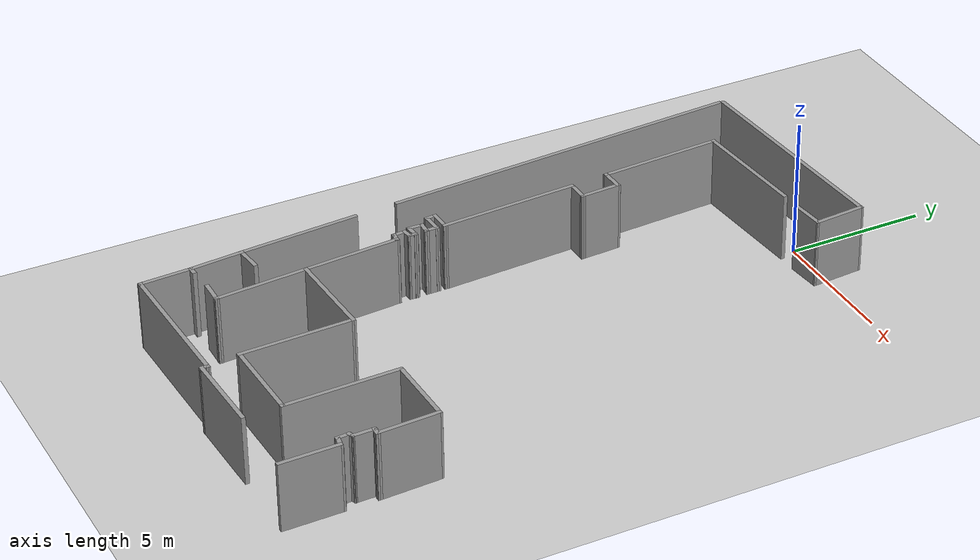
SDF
<sdf version="1.7">
 <world name="default">
  <light name="sun" type="directional">
   <pose>0 0 10 0 -0 0</pose>
   <diffuse>0.8 0.8 0.8 1</diffuse>
   <specular>0.2 0.2 0.2 1</specular>
   <attenuation>
    <range>1000</range>
    <constant>0.9</constant>
    <linear>0.01</linear>
    <quadratic>0.001</quadratic>
   </attenuation>
   <direction>-0.5 0.1 -0.9</direction>
   <spot><inner_angle>0</inner_angle><outer_angle>0</outer_angle><falloff>0</falloff></spot>
  </light>
  <model name="ground_plane">
   <static>1</static>
   <link name="link">
    <collision name="collision">
     <geometry><plane><normal>0 0 1</normal><size>100 100</size></plane></geometry>
     <surface><friction><ode><mu>100</mu><mu2>50</mu2></ode></friction></surface>
    </collision>
    <visual name="visual">
     <cast_shadows>0</cast_shadows>
     <geometry><plane><normal>0 0 1</normal><size>100 100</size></plane></geometry>
     <material>
      <script><uri>file://media/materials/scripts/gazebo.material</uri><name>Gazebo/Grey</name></script>
     </material>
    </visual>
   </link>
  </model>
  <gravity>0 0 -9.8</gravity>
  <magnetic_field>6e-06 2.3e-05 -4.2e-05</magnetic_field>
  <atmosphere type="adiabatic"/>
  <physics type="ode">
   <max_step_size>0.001</max_step_size>
   <real_time_factor>1</real_time_factor>
   <real_time_update_rate>1000</real_time_update_rate>
  </physics>
  <scene><ambient>0.4 0.4 0.4 1</ambient><background>0.7 0.7 0.7 1</background><shadows>1</shadows></scene>
  <spherical_coordinates>
   <surface_model>EARTH_WGS84</surface_model>
   <latitude_deg>0</latitude_deg>
   <longitude_deg>0</longitude_deg>
   <elevation>0</elevation>
   <heading_deg>0</heading_deg>
  </spherical_coordinates>
  <model name="officeGazebo">
   <pose>-0.063773 -10.2791 0 0 -0 0</pose>
   <link name="Wall_10">
    <collision name="Wall_10_Collision">
     <geometry><box><size>1.2875 0.15 2.5</size></box></geometry>
     <pose>0 0 1.25 0 -0 0</pose>
    </collision>
    <visual name="Wall_10_Visual">
     <pose>0 0 1.25 0 -0 0</pose>
     <geometry><box><size>1.2875 0.15 2.5</size></box></geometry>
     <material>
      <script><uri>file://media/materials/scripts/gazebo.material</uri><name>Gazebo/Grey</name></script>
      <ambient>1 1 1 1</ambient>
     </material>
     <meta><layer>0</layer></meta>
    </visual>
    <pose>1.60153 9.79083 0 0 -0 -3.0518</pose>
   </link>
   <link name="Wall_12">
    <collision name="Wall_12_Collision">
     <geometry><box><size>4.4193 0.15 2.5</size></box></geometry>
     <pose>0 0 1.25 0 -0 0</pose>
    </collision>
    <visual name="Wall_12_Visual">
     <pose>0 0 1.25 0 -0 0</pose>
     <geometry><box><size>4.4193 0.15 2.5</size></box></geometry>
     <material>
      <script><uri>file://media/materials/scripts/gazebo.material</uri><name>Gazebo/Grey</name></script>
      <ambient>1 1 1 1</ambient>
     </material>
     <meta><layer>0</layer></meta>
    </visual>
    <pose>-1.91543 9.55733 0 0 -0 -3.07029</pose>
   </link>
   <link name="Wall_15">
    <collision name="Wall_15_Collision">
     <geometry><box><size>4.54014 0.15 2.5</size></box></geometry>
     <pose>0 0 1.25 0 -0 0</pose>
    </collision>
    <visual name="Wall_15_Visual">
     <pose>0 0 1.25 0 -0 0</pose>
     <geometry><box><size>4.54014 0.15 2.5</size></box></geometry>
     <material>
      <script><uri>file://media/materials/scripts/gazebo.material</uri><name>Gazebo/Grey</name></script>
      <ambient>1 1 1 1</ambient>
     </material>
     <meta><layer>0</layer></meta>
    </visual>
    <pose>-3.91386 7.21407 0 0 -0 -1.51118</pose>
   </link>
   <link name="Wall_16">
    <collision name="Wall_16_Collision">
     <geometry><box><size>0.920843 0.15 2.5</size></box></geometry>
     <pose>0 0 1.25 0 -0 0</pose>
    </collision>
    <visual name="Wall_16_Visual">
     <pose>0 0 1.25 0 -0 0</pose>
     <geometry><box><size>0.920843 0.15 2.5</size></box></geometry>
     <material>
      <script><uri>file://media/materials/scripts/gazebo.material</uri><name>Gazebo/Grey</name></script>
      <ambient>1 1 1 1</ambient>
     </material>
     <meta><layer>0</layer></meta>
    </visual>
    <pose>-3.39782 5.0344 0 0 -0 0.029842</pose>
   </link>
   <link name="Wall_18">
    <collision name="Wall_18_Collision">
     <geometry><box><size>1.53118 0.15 2.5</size></box></geometry>
     <pose>0 0 1.25 0 -0 0</pose>
    </collision>
    <visual name="Wall_18_Visual">
     <pose>0 0 1.25 0 -0 0</pose>
     <geometry><box><size>1.53118 0.15 2.5</size></box></geometry>
     <material>
      <script><uri>file://media/materials/scripts/gazebo.material</uri><name>Gazebo/Grey</name></script>
      <ambient>1 1 1 1</ambient>
     </material>
     <meta><layer>0</layer></meta>
    </visual>
    <pose>-2.97343 4.35643 0 0 -0 -1.51409</pose>
   </link>
   <link name="Wall_19">
    <collision name="Wall_19_Collision">
     <geometry><box><size>0.900267 0.15 2.5</size></box></geometry>
     <pose>0 0 1.25 0 -0 0</pose>
    </collision>
    <visual name="Wall_19_Visual">
     <pose>0 0 1.25 0 -0 0</pose>
     <geometry><box><size>0.900267 0.15 2.5</size></box></geometry>
     <material>
      <script><uri>file://media/materials/scripts/gazebo.material</uri><name>Gazebo/Grey</name></script>
      <ambient>1 1 1 1</ambient>
     </material>
     <meta><layer>0</layer></meta>
    </visual>
    <pose>-3.30929 3.65695 0 0 -0 -3.11493</pose>
   </link>
   <link name="Wall_20">
    <collision name="Wall_20_Collision">
     <geometry><box><size>5.0957 0.15 2.5</size></box></geometry>
     <pose>0 0 1.25 0 -0 0</pose>
    </collision>
    <visual name="Wall_20_Visual">
     <pose>0 0 1.25 0 -0 0</pose>
     <geometry><box><size>5.0957 0.15 2.5</size></box></geometry>
     <material>
      <script><uri>file://media/materials/scripts/gazebo.material</uri><name>Gazebo/Grey</name></script>
      <ambient>1 1 1 1</ambient>
     </material>
     <meta><layer>0</layer></meta>
    </visual>
    <pose>-3.54485 1.17803 0 0 -0 -1.51438</pose>
   </link>
   <link name="Wall_21">
    <collision name="Wall_21_Collision">
     <geometry><box><size>0.849602 0.15 2.5</size></box></geometry>
     <pose>0 0 1.25 0 -0 0</pose>
    </collision>
    <visual name="Wall_21_Visual">
     <pose>0 0 1.25 0 -0 0</pose>
     <geometry><box><size>0.849602 0.15 2.5</size></box></geometry>
     <material>
      <script><uri>file://media/materials/scripts/gazebo.material</uri><name>Gazebo/Grey</name></script>
      <ambient>1 1 1 1</ambient>
     </material>
     <meta><layer>0</layer></meta>
    </visual>
    <pose>-3.7552 -1.29963 0 0 -0 -3.1166</pose>
   </link>
   <link name="Wall_22">
    <collision name="Wall_22_Collision">
     <geometry><box><size>0.466759 0.15 2.5</size></box></geometry>
     <pose>0 0 1.25 0 -0 0</pose>
    </collision>
    <visual name="Wall_22_Visual">
     <pose>0 0 1.25 0 -0 0</pose>
     <geometry><box><size>0.466759 0.15 2.5</size></box></geometry>
     <material>
      <script><uri>file://media/materials/scripts/gazebo.material</uri><name>Gazebo/Grey</name></script>
      <ambient>1 1 1 1</ambient>
     </material>
     <meta><layer>0</layer></meta>
    </visual>
    <pose>-4.08751 -1.46579 0 0 -0 -1.46014</pose>
   </link>
   <link name="Wall_23">
    <collision name="Wall_23_Collision">
     <geometry><box><size>0.815542 0.15 2.5</size></box></geometry>
     <pose>0 0 1.25 0 -0 0</pose>
    </collision>
    <visual name="Wall_23_Visual">
     <pose>0 0 1.25 0 -0 0</pose>
     <geometry><box><size>0.815542 0.15 2.5</size></box></geometry>
     <material>
      <script><uri>file://media/materials/scripts/gazebo.material</uri><name>Gazebo/Grey</name></script>
      <ambient>1 1 1 1</ambient>
     </material>
     <meta><layer>0</layer></meta>
    </visual>
    <pose>-3.73771 -1.60571 0 0 -0 0.052583</pose>
   </link>
   <link name="Wall_24">
    <collision name="Wall_24_Collision">
     <geometry><box><size>0.535179 0.15 2.5</size></box></geometry>
     <pose>0 0 1.25 0 -0 0</pose>
    </collision>
    <visual name="Wall_24_Visual">
     <pose>0 0 1.25 0 -0 0</pose>
     <geometry><box><size>0.535179 0.15 2.5</size></box></geometry>
     <material>
      <script><uri>file://media/materials/scripts/gazebo.material</uri><name>Gazebo/Grey</name></script>
      <ambient>1 1 1 1</ambient>
     </material>
     <meta><layer>0</layer></meta>
    </visual>
    <pose>-3.4054 -1.78061 0 0 -0 -1.5708</pose>
   </link>
   <link name="Wall_25">
    <collision name="Wall_25_Collision">
     <geometry><box><size>0.517708 0.15 2.5</size></box></geometry>
     <pose>0 0 1.25 0 -0 0</pose>
    </collision>
    <visual name="Wall_25_Visual">
     <pose>0 0 1.25 0 -0 0</pose>
     <geometry><box><size>0.517708 0.15 2.5</size></box></geometry>
     <material>
      <script><uri>file://media/materials/scripts/gazebo.material</uri><name>Gazebo/Grey</name></script>
      <ambient>1 1 1 1</ambient>
     </material>
     <meta><layer>0</layer></meta>
    </visual>
    <pose>-3.58905 -1.96425 0 0 -0 3.09401</pose>
   </link>
   <link name="Wall_26">
    <collision name="Wall_26_Collision">
     <geometry><box><size>0.623525 0.15 2.5</size></box></geometry>
     <pose>0 0 1.25 0 -0 0</pose>
    </collision>
    <visual name="Wall_26_Visual">
     <pose>0 0 1.25 0 -0 0</pose>
     <geometry><box><size>0.623525 0.15 2.5</size></box></geometry>
     <material>
      <script><uri>file://media/materials/scripts/gazebo.material</uri><name>Gazebo/Grey</name></script>
      <ambient>1 1 1 1</ambient>
     </material>
     <meta><layer>0</layer></meta>
    </visual>
    <pose>-3.78144 -2.19163 0 0 -0 -1.60782</pose>
   </link>
   <link name="Wall_27">
    <collision name="Wall_27_Collision">
     <geometry><box><size>0.571216 0.15 2.5</size></box></geometry>
     <pose>0 0 1.25 0 -0 0</pose>
    </collision>
    <visual name="Wall_27_Visual">
     <pose>0 0 1.25 0 -0 0</pose>
     <geometry><box><size>0.571216 0.15 2.5</size></box></geometry>
     <material>
      <script><uri>file://media/materials/scripts/gazebo.material</uri><name>Gazebo/Grey</name></script>
      <ambient>1 1 1 1</ambient>
     </material>
     <meta><layer>0</layer></meta>
    </visual>
    <pose>-3.5803 -2.41025 0 0 -0 0.083141</pose>
   </link>
   <link name="Wall_28">
    <collision name="Wall_28_Collision">
     <geometry><box><size>0.360608 0.15 2.5</size></box></geometry>
     <pose>0 0 1.25 0 -0 0</pose>
    </collision>
    <visual name="Wall_28_Visual">
     <pose>0 0 1.25 0 -0 0</pose>
     <geometry><box><size>0.360608 0.15 2.5</size></box></geometry>
     <material>
      <script><uri>file://media/materials/scripts/gazebo.material</uri><name>Gazebo/Grey</name></script>
      <ambient>1 1 1 1</ambient>
     </material>
     <meta><layer>0</layer></meta>
    </visual>
    <pose>-3.37917 -2.4977 0 0 -0 -1.65394</pose>
   </link>
   <link name="Wall_29">
    <collision name="Wall_29_Collision">
     <geometry><box><size>0.432019 0.15 2.5</size></box></geometry>
     <pose>0 0 1.25 0 -0 0</pose>
    </collision>
    <visual name="Wall_29_Visual">
     <pose>0 0 1.25 0 -0 0</pose>
     <geometry><box><size>0.432019 0.15 2.5</size></box></geometry>
     <material>
      <script><uri>file://media/materials/scripts/gazebo.material</uri><name>Gazebo/Grey</name></script>
      <ambient>1 1 1 1</ambient>
     </material>
     <meta><layer>0</layer></meta>
    </visual>
    <pose>-3.52783 -2.62013 0 0 -0 -3.01724</pose>
   </link>
   <link name="Wall_30">
    <collision name="Wall_30_Collision">
     <geometry><box><size>0.553789 0.15 2.5</size></box></geometry>
     <pose>0 0 1.25 0 -0 0</pose>
    </collision>
    <visual name="Wall_30_Visual">
     <pose>0 0 1.25 0 -0 0</pose>
     <geometry><box><size>0.553789 0.15 2.5</size></box></geometry>
     <material>
      <script><uri>file://media/materials/scripts/gazebo.material</uri><name>Gazebo/Grey</name></script>
      <ambient>1 1 1 1</ambient>
     </material>
     <meta><layer>0</layer></meta>
    </visual>
    <pose>-3.65026 -2.83876 0 0 -0 -1.48406</pose>
   </link>
   <link name="Wall_31">
    <collision name="Wall_31_Collision">
     <geometry><box><size>0.432019 0.15 2.5</size></box></geometry>
     <pose>0 0 1.25 0 -0 0</pose>
    </collision>
    <visual name="Wall_31_Visual">
     <pose>0 0 1.25 0 -0 0</pose>
     <geometry><box><size>0.432019 0.15 2.5</size></box></geometry>
     <material>
      <script><uri>file://media/materials/scripts/gazebo.material</uri><name>Gazebo/Grey</name></script>
      <ambient>1 1 1 1</ambient>
     </material>
     <meta><layer>0</layer></meta>
    </visual>
    <pose>-3.49285 -3.05738 0 0 -0 -0.124355</pose>
   </link>
   <link name="Wall_33">
    <collision name="Wall_33_Collision">
     <geometry><box><size>4.39008 0.15 2.5</size></box></geometry>
     <pose>0 0 1.25 0 -0 0</pose>
    </collision>
    <visual name="Wall_33_Visual">
     <pose>0 0 1.25 0 -0 0</pose>
     <geometry><box><size>4.39008 0.15 2.5</size></box></geometry>
     <material>
      <script><uri>file://media/materials/scripts/gazebo.material</uri><name>Gazebo/Grey</name></script>
      <ambient>1 1 1 1</ambient>
     </material>
     <meta><layer>0</layer></meta>
    </visual>
    <pose>-5.15881 -5.81546 0 0 -0 -1.4954</pose>
   </link>
   <link name="Wall_34">
    <collision name="Wall_34_Collision">
     <geometry><box><size>1.05194 0.15 2.5</size></box></geometry>
     <pose>0 0 1.25 0 -0 0</pose>
    </collision>
    <visual name="Wall_34_Visual">
     <pose>0 0 1.25 0 -0 0</pose>
     <geometry><box><size>1.05194 0.15 2.5</size></box></geometry>
     <material>
      <script><uri>file://media/materials/scripts/gazebo.material</uri><name>Gazebo/Grey</name></script>
      <ambient>1 1 1 1</ambient>
     </material>
     <meta><layer>0</layer></meta>
    </visual>
    <pose>-4.55046 -7.88385 0 0 -0 0.101347</pose>
   </link>
   <link name="Wall_36">
    <collision name="Wall_36_Collision">
     <geometry><box><size>2.01299 0.15 2.5</size></box></geometry>
     <pose>0 0 1.25 0 -0 0</pose>
    </collision>
    <visual name="Wall_36_Visual">
     <pose>0 0 1.25 0 -0 0</pose>
     <geometry><box><size>2.01299 0.15 2.5</size></box></geometry>
     <material>
      <script><uri>file://media/materials/scripts/gazebo.material</uri><name>Gazebo/Grey</name></script>
      <ambient>1 1 1 1</ambient>
     </material>
     <meta><layer>0</layer></meta>
    </visual>
    <pose>-4.91547 -8.85721 0 0 -0 -1.48088</pose>
   </link>
   <link name="Wall_37">
    <collision name="Wall_37_Collision">
     <geometry><box><size>0.378638 0.15 2.5</size></box></geometry>
     <pose>0 0 1.25 0 -0 0</pose>
    </collision>
    <visual name="Wall_37_Visual">
     <pose>0 0 1.25 0 -0 0</pose>
     <geometry><box><size>0.378638 0.15 2.5</size></box></geometry>
     <material>
      <script><uri>file://media/materials/scripts/gazebo.material</uri><name>Gazebo/Grey</name></script>
      <ambient>1 1 1 1</ambient>
     </material>
     <meta><layer>0</layer></meta>
    </visual>
    <pose>-4.71776 -9.77734 0 0 -0 0.066568</pose>
   </link>
   <link name="Wall_4">
    <collision name="Wall_4_Collision">
     <geometry><box><size>1.91456 0.15 2.5</size></box></geometry>
     <pose>0 0 1.25 0 -0 0</pose>
    </collision>
    <visual name="Wall_4_Visual">
     <pose>0 0 1.25 0 -0 0</pose>
     <geometry><box><size>1.91456 0.15 2.5</size></box></geometry>
     <material>
      <script><uri>file://media/materials/scripts/gazebo.material</uri><name>Gazebo/Grey</name></script>
      <ambient>1 1 1 1</ambient>
     </material>
     <meta><layer>0</layer></meta>
    </visual>
    <pose>2.09763 10.7213 0 0 -0 1.65063</pose>
   </link>
   <link name="Wall_40">
    <collision name="Wall_40_Collision">
     <geometry><box><size>6.80519 0.15 2.5</size></box></geometry>
     <pose>0 0 1.25 0 -0 0</pose>
    </collision>
    <visual name="Wall_40_Visual">
     <pose>0 0 1.25 0 -0 0</pose>
     <geometry><box><size>6.80519 0.15 2.5</size></box></geometry>
     <material>
      <script><uri>file://media/materials/scripts/gazebo.material</uri><name>Gazebo/Grey</name></script>
      <ambient>1 1 1 1</ambient>
     </material>
     <meta><layer>0</layer></meta>
    </visual>
    <pose>-3.09193 -6.39222 0 0 -0 -1.49228</pose>
   </link>
   <link name="Wall_41">
    <collision name="Wall_41_Collision">
     <geometry><box><size>0.956207 0.15 2.5</size></box></geometry>
     <pose>0 0 1.25 0 -0 0</pose>
    </collision>
    <visual name="Wall_41_Visual">
     <pose>0 0 1.25 0 -0 0</pose>
     <geometry><box><size>0.956207 0.15 2.5</size></box></geometry>
     <material>
      <script><uri>file://media/materials/scripts/gazebo.material</uri><name>Gazebo/Grey</name></script>
      <ambient>1 1 1 1</ambient>
     </material>
     <meta><layer>0</layer></meta>
    </visual>
    <pose>-3.23397 -9.70196 0 0 -0 3.12273</pose>
   </link>
   <link name="Wall_45">
    <collision name="Wall_45_Collision">
     <geometry><box><size>3.52848 0.15 2.5</size></box></geometry>
     <pose>0 0 1.25 0 -0 0</pose>
    </collision>
    <visual name="Wall_45_Visual">
     <pose>0 0 1.25 0 -0 0</pose>
     <geometry><box><size>3.52848 0.15 2.5</size></box></geometry>
     <material>
      <script><uri>file://media/materials/scripts/gazebo.material</uri><name>Gazebo/Grey</name></script>
      <ambient>1 1 1 1</ambient>
     </material>
     <meta><layer>0</layer></meta>
    </visual>
    <pose>-1.38014 -6.39189 0 0 -0 0.041427</pose>
   </link>
   <link name="Wall_46">
    <collision name="Wall_46_Collision">
     <geometry><box><size>4.10523 0.15 2.5</size></box></geometry>
     <pose>0 0 1.25 0 -0 0</pose>
    </collision>
    <visual name="Wall_46_Visual">
     <pose>0 0 1.25 0 -0 0</pose>
     <geometry><box><size>4.10523 0.15 2.5</size></box></geometry>
     <material>
      <script><uri>file://media/materials/scripts/gazebo.material</uri><name>Gazebo/Grey</name></script>
      <ambient>1 1 1 1</ambient>
     </material>
     <meta><layer>0</layer></meta>
    </visual>
    <pose>0.368864 -8.29831 0 0 -0 -1.53983</pose>
   </link>
   <link name="Wall_47">
    <collision name="Wall_47_Collision">
     <geometry><box><size>3.31614 0.15 2.5</size></box></geometry>
     <pose>0 0 1.25 0 -0 0</pose>
    </collision>
    <visual name="Wall_47_Visual">
     <pose>0 0 1.25 0 -0 0</pose>
     <geometry><box><size>3.31614 0.15 2.5</size></box></geometry>
     <material>
      <script><uri>file://media/materials/scripts/gazebo.material</uri><name>Gazebo/Grey</name></script>
      <ambient>1 1 1 1</ambient>
     </material>
     <meta><layer>0</layer></meta>
    </visual>
    <pose>2.01293 -10.231 0 0 -0 0.027617</pose>
   </link>
   <link name="Wall_48">
    <collision name="Wall_48_Collision">
     <geometry><box><size>4.20954 0.15 2.5</size></box></geometry>
     <pose>0 0 1.25 0 -0 0</pose>
    </collision>
    <visual name="Wall_48_Visual">
     <pose>0 0 1.25 0 -0 0</pose>
     <geometry><box><size>4.20954 0.15 2.5</size></box></geometry>
     <material>
      <script><uri>file://media/materials/scripts/gazebo.material</uri><name>Gazebo/Grey</name></script>
      <ambient>1 1 1 1</ambient>
     </material>
     <meta><layer>0</layer></meta>
    </visual>
    <pose>3.54331 -8.15839 0 0 -0 1.59665</pose>
   </link>
   <link name="Wall_49">
    <collision name="Wall_49_Collision">
     <geometry><box><size>2.77403 0.15 2.5</size></box></geometry>
     <pose>0 0 1.25 0 -0 0</pose>
    </collision>
    <visual name="Wall_49_Visual">
     <pose>0 0 1.25 0 -0 0</pose>
     <geometry><box><size>2.77403 0.15 2.5</size></box></geometry>
     <material>
      <script><uri>file://media/materials/scripts/gazebo.material</uri><name>Gazebo/Grey</name></script>
      <ambient>1 1 1 1</ambient>
     </material>
     <meta><layer>0</layer></meta>
    </visual>
    <pose>4.8026 -6.1033 0 0 -0 0.019997</pose>
   </link>
   <link name="Wall_5">
    <collision name="Wall_5_Collision">
     <geometry><box><size>8.42257 0.15 2.5</size></box></geometry>
     <pose>0 0 1.25 0 -0 0</pose>
    </collision>
    <visual name="Wall_5_Visual">
     <pose>0 0 1.25 0 -0 0</pose>
     <geometry><box><size>8.42257 0.15 2.5</size></box></geometry>
     <material>
      <script><uri>file://media/materials/scripts/gazebo.material</uri><name>Gazebo/Grey</name></script>
      <ambient>1 1 1 1</ambient>
     </material>
     <meta><layer>0</layer></meta>
    </visual>
    <pose>-2.10029 11.3323 0 0 -0 -3.07664</pose>
   </link>
   <link name="Wall_50">
    <collision name="Wall_50_Collision">
     <geometry><box><size>2.28637 0.15 2.5</size></box></geometry>
     <pose>0 0 1.25 0 -0 0</pose>
    </collision>
    <visual name="Wall_50_Visual">
     <pose>0 0 1.25 0 -0 0</pose>
     <geometry><box><size>2.28637 0.15 2.5</size></box></geometry>
     <material>
      <script><uri>file://media/materials/scripts/gazebo.material</uri><name>Gazebo/Grey</name></script>
      <ambient>1 1 1 1</ambient>
     </material>
     <meta><layer>0</layer></meta>
    </visual>
    <pose>6.16682 -7.14396 0 0 -0 -1.52166</pose>
   </link>
   <link name="Wall_51">
    <collision name="Wall_51_Collision">
     <geometry><box><size>0.378043 0.15 2.5</size></box></geometry>
     <pose>0 0 1.25 0 -0 0</pose>
    </collision>
    <visual name="Wall_51_Visual">
     <pose>0 0 1.25 0 -0 0</pose>
     <geometry><box><size>0.378043 0.15 2.5</size></box></geometry>
     <material>
      <script><uri>file://media/materials/scripts/gazebo.material</uri><name>Gazebo/Grey</name></script>
      <ambient>1 1 1 1</ambient>
     </material>
     <meta><layer>0</layer></meta>
    </visual>
    <pose>6.1056 -8.20211 0 0 -0 3.06482</pose>
   </link>
   <link name="Wall_52">
    <collision name="Wall_52_Collision">
     <geometry><box><size>0.867306 0.15 2.5</size></box></geometry>
     <pose>0 0 1.25 0 -0 0</pose>
    </collision>
    <visual name="Wall_52_Visual">
     <pose>0 0 1.25 0 -0 0</pose>
     <geometry><box><size>0.867306 0.15 2.5</size></box></geometry>
     <material>
      <script><uri>file://media/materials/scripts/gazebo.material</uri><name>Gazebo/Grey</name></script>
      <ambient>1 1 1 1</ambient>
     </material>
     <meta><layer>0</layer></meta>
    </visual>
    <pose>6.00066 -8.55191 0 0 -0 -1.54641</pose>
   </link>
   <link name="Wall_53">
    <collision name="Wall_53_Collision">
     <geometry><box><size>0.306436 0.15 2.5</size></box></geometry>
     <pose>0 0 1.25 0 -0 0</pose>
    </collision>
    <visual name="Wall_53_Visual">
     <pose>0 0 1.25 0 -0 0</pose>
     <geometry><box><size>0.306436 0.15 2.5</size></box></geometry>
     <material>
      <script><uri>file://media/materials/scripts/gazebo.material</uri><name>Gazebo/Grey</name></script>
      <ambient>1 1 1 1</ambient>
     </material>
     <meta><layer>0</layer></meta>
    </visual>
    <pose>5.93945 -8.94544 0 0 -0 -2.67794</pose>
   </link>
   <link name="Wall_54">
    <collision name="Wall_54_Collision">
     <geometry><box><size>0.553789 0.15 2.5</size></box></geometry>
     <pose>0 0 1.25 0 -0 0</pose>
    </collision>
    <visual name="Wall_54_Visual">
     <pose>0 0 1.25 0 -0 0</pose>
     <geometry><box><size>0.553789 0.15 2.5</size></box></geometry>
     <material>
      <script><uri>file://media/materials/scripts/gazebo.material</uri><name>Gazebo/Grey</name></script>
      <ambient>1 1 1 1</ambient>
     </material>
     <meta><layer>0</layer></meta>
    </visual>
    <pose>5.88698 -9.18155 0 0 -0 -1.48406</pose>
   </link>
   <link name="Wall_55">
    <collision name="Wall_55_Collision">
     <geometry><box><size>0.486428 0.15 2.5</size></box></geometry>
     <pose>0 0 1.25 0 -0 0</pose>
    </collision>
    <visual name="Wall_55_Visual">
     <pose>0 0 1.25 0 -0 0</pose>
     <geometry><box><size>0.486428 0.15 2.5</size></box></geometry>
     <material>
      <script><uri>file://media/materials/scripts/gazebo.material</uri><name>Gazebo/Grey</name></script>
      <ambient>1 1 1 1</ambient>
     </material>
     <meta><layer>0</layer></meta>
    </visual>
    <pose>6.07062 -9.40893 0 0 -0 -0.156602</pose>
   </link>
   <link name="Wall_56">
    <collision name="Wall_56_Collision">
     <geometry><box><size>2.17915 0.15 2.5</size></box></geometry>
     <pose>0 0 1.25 0 -0 0</pose>
    </collision>
    <visual name="Wall_56_Visual">
     <pose>0 0 1.25 0 -0 0</pose>
     <geometry><box><size>2.17915 0.15 2.5</size></box></geometry>
     <material>
      <script><uri>file://media/materials/scripts/gazebo.material</uri><name>Gazebo/Grey</name></script>
      <ambient>1 1 1 1</ambient>
     </material>
     <meta><layer>0</layer></meta>
    </visual>
    <pose>6.25427 -10.4496 0 0 -0 -1.55356</pose>
   </link>
   <link name="Wall_58">
    <collision name="Wall_58_Collision">
     <geometry><box><size>1.93602 0.15 2.5</size></box></geometry>
     <pose>0 0 1.25 0 -0 0</pose>
    </collision>
    <visual name="Wall_58_Visual">
     <pose>0 0 1.25 0 -0 0</pose>
     <geometry><box><size>1.93602 0.15 2.5</size></box></geometry>
     <material>
      <script><uri>file://media/materials/scripts/gazebo.material</uri><name>Gazebo/Grey</name></script>
      <ambient>1 1 1 1</ambient>
     </material>
     <meta><layer>0</layer></meta>
    </visual>
    <pose>-4.7894 -10.6769 0 0 -0 -1.52327</pose>
   </link>
   <link name="Wall_59">
    <collision name="Wall_59_Collision">
     <geometry><box><size>5.48734 0.15 2.5</size></box></geometry>
     <pose>0 0 1.25 0 -0 0</pose>
    </collision>
    <visual name="Wall_59_Visual">
     <pose>0 0 1.25 0 -0 0</pose>
     <geometry><box><size>5.48734 0.15 2.5</size></box></geometry>
     <material>
      <script><uri>file://media/materials/scripts/gazebo.material</uri><name>Gazebo/Grey</name></script>
      <ambient>1 1 1 1</ambient>
     </material>
     <meta><layer>0</layer></meta>
    </visual>
    <pose>-2.07974 -11.4902 0 0 -0 0.0295</pose>
   </link>
   <link name="Wall_60">
    <collision name="Wall_60_Collision">
     <geometry><box><size>0.343184 0.15 2.5</size></box></geometry>
     <pose>0 0 1.25 0 -0 0</pose>
    </collision>
    <visual name="Wall_60_Visual">
     <pose>0 0 1.25 0 -0 0</pose>
     <geometry><box><size>0.343184 0.15 2.5</size></box></geometry>
     <material>
      <script><uri>file://media/materials/scripts/gazebo.material</uri><name>Gazebo/Grey</name></script>
      <ambient>1 1 1 1</ambient>
     </material>
     <meta><layer>0</layer></meta>
    </visual>
    <pose>0.58749 -11.5077 0 0 -0 -1.5708</pose>
   </link>
   <link name="Wall_61">
    <collision name="Wall_61_Collision">
     <geometry><box><size>3.14264 0.15 2.5</size></box></geometry>
     <pose>0 0 1.25 0 -0 0</pose>
    </collision>
    <visual name="Wall_61_Visual">
     <pose>0 0 1.25 0 -0 0</pose>
     <geometry><box><size>3.14264 0.15 2.5</size></box></geometry>
     <material>
      <script><uri>file://media/materials/scripts/gazebo.material</uri><name>Gazebo/Grey</name></script>
      <ambient>1 1 1 1</ambient>
     </material>
     <meta><layer>0</layer></meta>
    </visual>
    <pose>2.08289 -11.5515 0 0 -0 0.035073</pose>
   </link>
   <link name="Wall_8">
    <collision name="Wall_8_Collision">
     <geometry><box><size>13.164 0.15 2.5</size></box></geometry>
     <pose>0 0 1.25 0 -0 0</pose>
    </collision>
    <visual name="Wall_8_Visual">
     <pose>0 0 1.25 0 -0 0</pose>
     <geometry><box><size>13.164 0.15 2.5</size></box></geometry>
     <material>
      <script><uri>file://media/materials/scripts/gazebo.material</uri><name>Gazebo/Grey</name></script>
      <ambient>1 1 1 1</ambient>
     </material>
     <meta><layer>0</layer></meta>
    </visual>
    <pose>-5.84352 4.40886 0 0 -0 -1.50547</pose>
   </link>
   <static>1</static>
  </model>
 </world>
</sdf>
